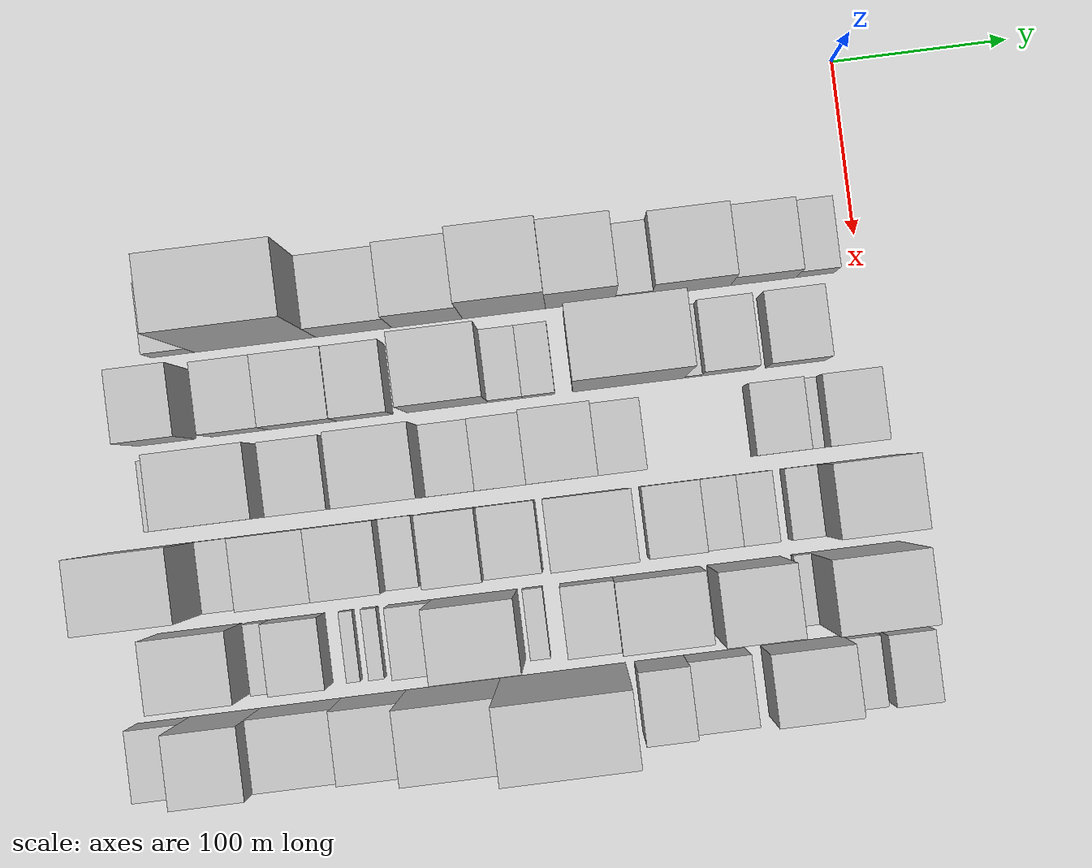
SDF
<sdf version="1.6">
 <world name="default">
  <include><name>ground_plane_1</name><uri>model://HANNAS_ground_plane</uri></include>
  <model name="building_15">
   <static>1</static>
   <pose>100.0000 -392.8743 0 0.000000 0.000000 0.000000</pose>
   <link name="link">
    <pose>0 0 21.00 0 0 0</pose>
    <collision name="collision"><geometry><box><size>40.0000 24.7014 42.0000</size></box></geometry></collision>
    <visual name="visual">
     <cast_shadows>0</cast_shadows>
     <geometry><box><size>40.0000 24.7014 42.0000</size></box></geometry>
     <material>
      <script>
       <uri>model://HANNAS_wall/materials/scripts</uri>
       <uri>model://HANNAS_wall/materials/textures</uri>
       <name>vrc/HANNAS_wall</name>
      </script>
     </material>
    </visual>
   </link>
  </model>
  <model name="building_16">
   <static>1</static>
   <pose>100.0000 -345.8023 0 0.000000 0.000000 0.000000</pose>
   <link name="link">
    <pose>0 0 100.50 0 0 0</pose>
    <collision name="collision"><geometry><box><size>40.0000 69.4425 201.0000</size></box></geometry></collision>
    <visual name="visual">
     <cast_shadows>0</cast_shadows>
     <geometry><box><size>40.0000 69.4425 201.0000</size></box></geometry>
     <material>
      <script>
       <uri>model://HANNAS_wall/materials/scripts</uri>
       <uri>model://HANNAS_wall/materials/textures</uri>
       <name>vrc/HANNAS_wall</name>
      </script>
     </material>
    </visual>
   </link>
  </model>
  <model name="building_17">
   <static>1</static>
   <pose>100.0000 -289.2329 0 0.000000 0.000000 0.000000</pose>
   <link name="link">
    <pose>0 0 42.00 0 0 0</pose>
    <collision name="collision"><geometry><box><size>40.0000 43.6964 84.0000</size></box></geometry></collision>
    <visual name="visual">
     <cast_shadows>0</cast_shadows>
     <geometry><box><size>40.0000 43.6964 84.0000</size></box></geometry>
     <material>
      <script>
       <uri>model://HANNAS_wall/materials/scripts</uri>
       <uri>model://HANNAS_wall/materials/textures</uri>
       <name>vrc/HANNAS_wall</name>
      </script>
     </material>
    </visual>
   </link>
  </model>
  <model name="building_18">
   <static>1</static>
   <pose>100.0000 -247.1147 0 0.000000 0.000000 0.000000</pose>
   <link name="link">
    <pose>0 0 52.50 0 0 0</pose>
    <collision name="collision"><geometry><box><size>40.0000 40.5399 105.0000</size></box></geometry></collision>
    <visual name="visual">
     <cast_shadows>0</cast_shadows>
     <geometry><box><size>40.0000 40.5399 105.0000</size></box></geometry>
     <material>
      <script>
       <uri>model://HANNAS_wall/materials/scripts</uri>
       <uri>model://HANNAS_wall/materials/textures</uri>
       <name>vrc/HANNAS_wall</name>
      </script>
     </material>
    </visual>
   </link>
  </model>
  <model name="building_19">
   <static>1</static>
   <pose>100.0000 -203.0991 0 0.000000 0.000000 0.000000</pose>
   <link name="link">
    <pose>0 0 70.50 0 0 0</pose>
    <collision name="collision"><geometry><box><size>40.0000 47.4914 141.0000</size></box></geometry></collision>
    <visual name="visual">
     <cast_shadows>0</cast_shadows>
     <geometry><box><size>40.0000 47.4914 141.0000</size></box></geometry>
     <material>
      <script>
       <uri>model://HANNAS_wall/materials/scripts</uri>
       <uri>model://HANNAS_wall/materials/textures</uri>
       <name>vrc/HANNAS_wall</name>
      </script>
     </material>
    </visual>
   </link>
  </model>
  <model name="building_20">
   <static>1</static>
   <pose>100.0000 -159.4786 0 0.000000 0.000000 0.000000</pose>
   <link name="link">
    <pose>0 0 58.50 0 0 0</pose>
    <collision name="collision"><geometry><box><size>40.0000 39.7496 117.0000</size></box></geometry></collision>
    <visual name="visual">
     <cast_shadows>0</cast_shadows>
     <geometry><box><size>40.0000 39.7496 117.0000</size></box></geometry>
     <material>
      <script>
       <uri>model://HANNAS_wall/materials/scripts</uri>
       <uri>model://HANNAS_wall/materials/textures</uri>
       <name>vrc/HANNAS_wall</name>
      </script>
     </material>
    </visual>
   </link>
  </model>
  <model name="building_21">
   <static>1</static>
   <pose>100.0000 -129.1754 0 0.000000 0.000000 0.000000</pose>
   <link name="link">
    <pose>0 0 19.50 0 0 0</pose>
    <collision name="collision"><geometry><box><size>40.0000 20.8567 39.0000</size></box></geometry></collision>
    <visual name="visual">
     <cast_shadows>0</cast_shadows>
     <geometry><box><size>40.0000 20.8567 39.0000</size></box></geometry>
     <material>
      <script>
       <uri>model://HANNAS_wall/materials/scripts</uri>
       <uri>model://HANNAS_wall/materials/textures</uri>
       <name>vrc/HANNAS_wall</name>
      </script>
     </material>
    </visual>
   </link>
  </model>
  <model name="building_22">
   <static>1</static>
   <pose>100.0000 -96.0794 0 0.000000 0.000000 0.000000</pose>
   <link name="link">
    <pose>0 0 43.50 0 0 0</pose>
    <collision name="collision"><geometry><box><size>40.0000 45.3353 87.0000</size></box></geometry></collision>
    <visual name="visual">
     <cast_shadows>0</cast_shadows>
     <geometry><box><size>40.0000 45.3353 87.0000</size></box></geometry>
     <material>
      <script>
       <uri>model://HANNAS_wall/materials/scripts</uri>
       <uri>model://HANNAS_wall/materials/textures</uri>
       <name>vrc/HANNAS_wall</name>
      </script>
     </material>
    </visual>
   </link>
  </model>
  <model name="building_23">
   <static>1</static>
   <pose>100.0000 -54.5835 0 0.000000 0.000000 0.000000</pose>
   <link name="link">
    <pose>0 0 31.50 0 0 0</pose>
    <collision name="collision"><geometry><box><size>40.0000 37.6564 63.0000</size></box></geometry></collision>
    <visual name="visual">
     <cast_shadows>0</cast_shadows>
     <geometry><box><size>40.0000 37.6564 63.0000</size></box></geometry>
     <material>
      <script>
       <uri>model://HANNAS_wall/materials/scripts</uri>
       <uri>model://HANNAS_wall/materials/textures</uri>
       <name>vrc/HANNAS_wall</name>
      </script>
     </material>
    </visual>
   </link>
  </model>
  <model name="building_24">
   <static>1</static>
   <pose>100.0000 -24.7409 0 0.000000 0.000000 0.000000</pose>
   <link name="link">
    <pose>0 0 21.00 0 0 0</pose>
    <collision name="collision"><geometry><box><size>40.0000 22.0289 42.0000</size></box></geometry></collision>
    <visual name="visual">
     <cast_shadows>0</cast_shadows>
     <geometry><box><size>40.0000 22.0289 42.0000</size></box></geometry>
     <material>
      <script>
       <uri>model://HANNAS_wall/materials/scripts</uri>
       <uri>model://HANNAS_wall/materials/textures</uri>
       <name>vrc/HANNAS_wall</name>
      </script>
     </material>
    </visual>
   </link>
  </model>
  <model name="building_58">
   <static>1</static>
   <pose>149.0000 -402.2383 0 0.000000 0.000000 0.000000</pose>
   <link name="link">
    <pose>0 0 46.50 0 0 0</pose>
    <collision name="collision"><geometry><box><size>40.0000 33.3585 93.0000</size></box></geometry></collision>
    <visual name="visual">
     <cast_shadows>0</cast_shadows>
     <geometry><box><size>40.0000 33.3585 93.0000</size></box></geometry>
     <material>
      <script>
       <uri>model://HANNAS_wall/materials/scripts</uri>
       <uri>model://HANNAS_wall/materials/textures</uri>
       <name>vrc/HANNAS_wall</name>
      </script>
     </material>
    </visual>
   </link>
  </model>
  <model name="building_59">
   <static>1</static>
   <pose>149.0000 -360.0440 0 0.000000 0.000000 0.000000</pose>
   <link name="link">
    <pose>0 0 33.00 0 0 0</pose>
    <collision name="collision"><geometry><box><size>40.0000 33.0301 66.0000</size></box></geometry></collision>
    <visual name="visual">
     <cast_shadows>0</cast_shadows>
     <geometry><box><size>40.0000 33.0301 66.0000</size></box></geometry>
     <material>
      <script>
       <uri>model://HANNAS_wall/materials/scripts</uri>
       <uri>model://HANNAS_wall/materials/textures</uri>
       <name>vrc/HANNAS_wall</name>
      </script>
     </material>
    </visual>
   </link>
  </model>
  <model name="building_60">
   <static>1</static>
   <pose>149.0000 -323.9631 0 0.000000 0.000000 0.000000</pose>
   <link name="link">
    <pose>0 0 33.00 0 0 0</pose>
    <collision name="collision"><geometry><box><size>40.0000 39.1316 66.0000</size></box></geometry></collision>
    <visual name="visual">
     <cast_shadows>0</cast_shadows>
     <geometry><box><size>40.0000 39.1316 66.0000</size></box></geometry>
     <material>
      <script>
       <uri>model://HANNAS_wall/materials/scripts</uri>
       <uri>model://HANNAS_wall/materials/textures</uri>
       <name>vrc/HANNAS_wall</name>
      </script>
     </material>
    </visual>
   </link>
  </model>
  <model name="building_61">
   <static>1</static>
   <pose>149.0000 -288.6069 0 0.000000 0.000000 0.000000</pose>
   <link name="link">
    <pose>0 0 31.50 0 0 0</pose>
    <collision name="collision"><geometry><box><size>40.0000 31.5810 63.0000</size></box></geometry></collision>
    <visual name="visual">
     <cast_shadows>0</cast_shadows>
     <geometry><box><size>40.0000 31.5810 63.0000</size></box></geometry>
     <material>
      <script>
       <uri>model://HANNAS_wall/materials/scripts</uri>
       <uri>model://HANNAS_wall/materials/textures</uri>
       <name>vrc/HANNAS_wall</name>
      </script>
     </material>
    </visual>
   </link>
  </model>
  <model name="building_62">
   <static>1</static>
   <pose>149.0000 -241.5577 0 0.000000 0.000000 0.000000</pose>
   <link name="link">
    <pose>0 0 58.50 0 0 0</pose>
    <collision name="collision"><geometry><box><size>40.0000 46.5174 117.0000</size></box></geometry></collision>
    <visual name="visual">
     <cast_shadows>0</cast_shadows>
     <geometry><box><size>40.0000 46.5174 117.0000</size></box></geometry>
     <material>
      <script>
       <uri>model://HANNAS_wall/materials/scripts</uri>
       <uri>model://HANNAS_wall/materials/textures</uri>
       <name>vrc/HANNAS_wall</name>
      </script>
     </material>
    </visual>
   </link>
  </model>
  <model name="building_63">
   <static>1</static>
   <pose>149.0000 -208.4302 0 0.000000 0.000000 0.000000</pose>
   <link name="link">
    <pose>0 0 16.50 0 0 0</pose>
    <collision name="collision"><geometry><box><size>40.0000 19.7375 33.0000</size></box></geometry></collision>
    <visual name="visual">
     <cast_shadows>0</cast_shadows>
     <geometry><box><size>40.0000 19.7375 33.0000</size></box></geometry>
     <material>
      <script>
       <uri>model://HANNAS_wall/materials/scripts</uri>
       <uri>model://HANNAS_wall/materials/textures</uri>
       <name>vrc/HANNAS_wall</name>
      </script>
     </material>
    </visual>
   </link>
  </model>
  <model name="building_64">
   <static>1</static>
   <pose>149.0000 -189.3045 0 0.000000 0.000000 0.000000</pose>
   <link name="link">
    <pose>0 0 16.50 0 0 0</pose>
    <collision name="collision"><geometry><box><size>40.0000 18.5139 33.0000</size></box></geometry></collision>
    <visual name="visual">
     <cast_shadows>0</cast_shadows>
     <geometry><box><size>40.0000 18.5139 33.0000</size></box></geometry>
     <material>
      <script>
       <uri>model://HANNAS_wall/materials/scripts</uri>
       <uri>model://HANNAS_wall/materials/textures</uri>
       <name>vrc/HANNAS_wall</name>
      </script>
     </material>
    </visual>
   </link>
  </model>
  <model name="building_65">
   <static>1</static>
   <pose>149.0000 -138.1636 0 0.000000 0.000000 0.000000</pose>
   <link name="link">
    <pose>0 0 85.50 0 0 0</pose>
    <collision name="collision"><geometry><box><size>40.0000 63.7679 171.0000</size></box></geometry></collision>
    <visual name="visual">
     <cast_shadows>0</cast_shadows>
     <geometry><box><size>40.0000 63.7679 171.0000</size></box></geometry>
     <material>
      <script>
       <uri>model://HANNAS_wall/materials/scripts</uri>
       <uri>model://HANNAS_wall/materials/textures</uri>
       <name>vrc/HANNAS_wall</name>
      </script>
     </material>
    </visual>
   </link>
  </model>
  <model name="building_66">
   <static>1</static>
   <pose>149.0000 -101.3950 0 0.000000 0.000000 0.000000</pose>
   <link name="link">
    <pose>0 0 10.50 0 0 0</pose>
    <collision name="collision"><geometry><box><size>40.0000 9.7692 21.0000</size></box></geometry></collision>
    <visual name="visual">
     <cast_shadows>0</cast_shadows>
     <geometry><box><size>40.0000 9.7692 21.0000</size></box></geometry>
     <material>
      <script>
       <uri>model://HANNAS_wall/materials/scripts</uri>
       <uri>model://HANNAS_wall/materials/textures</uri>
       <name>vrc/HANNAS_wall</name>
      </script>
     </material>
    </visual>
   </link>
  </model>
  <model name="building_67">
   <static>1</static>
   <pose>149.0000 -81.0653 0 0.000000 0.000000 0.000000</pose>
   <link name="link">
    <pose>0 0 28.50 0 0 0</pose>
    <collision name="collision"><geometry><box><size>40.0000 30.8902 57.0000</size></box></geometry></collision>
    <visual name="visual">
     <cast_shadows>0</cast_shadows>
     <geometry><box><size>40.0000 30.8902 57.0000</size></box></geometry>
     <material>
      <script>
       <uri>model://HANNAS_wall/materials/scripts</uri>
       <uri>model://HANNAS_wall/materials/textures</uri>
       <name>vrc/HANNAS_wall</name>
      </script>
     </material>
    </visual>
   </link>
  </model>
  <model name="building_68">
   <static>1</static>
   <pose>149.0000 -42.6213 0 0.000000 0.000000 0.000000</pose>
   <link name="link">
    <pose>0 0 30.00 0 0 0</pose>
    <collision name="collision"><geometry><box><size>40.0000 33.9979 60.0000</size></box></geometry></collision>
    <visual name="visual">
     <cast_shadows>0</cast_shadows>
     <geometry><box><size>40.0000 33.9979 60.0000</size></box></geometry>
     <material>
      <script>
       <uri>model://HANNAS_wall/materials/scripts</uri>
       <uri>model://HANNAS_wall/materials/textures</uri>
       <name>vrc/HANNAS_wall</name>
      </script>
     </material>
    </visual>
   </link>
  </model>
  <model name="building_102">
   <static>1</static>
   <pose>198.0000 -411.8034 0 0.000000 0.000000 0.000000</pose>
   <link name="link">
    <pose>0 0 12.00 0 0 0</pose>
    <collision name="collision"><geometry><box><size>40.0000 11.9186 24.0000</size></box></geometry></collision>
    <visual name="visual">
     <cast_shadows>0</cast_shadows>
     <geometry><box><size>40.0000 11.9186 24.0000</size></box></geometry>
     <material>
      <script>
       <uri>model://HANNAS_wall/materials/scripts</uri>
       <uri>model://HANNAS_wall/materials/textures</uri>
       <name>vrc/HANNAS_wall</name>
      </script>
     </material>
    </visual>
   </link>
  </model>
  <model name="building_103">
   <static>1</static>
   <pose>198.0000 -370.4230 0 0.000000 0.000000 0.000000</pose>
   <link name="link">
    <pose>0 0 70.50 0 0 0</pose>
    <collision name="collision"><geometry><box><size>40.0000 52.8423 141.0000</size></box></geometry></collision>
    <visual name="visual">
     <cast_shadows>0</cast_shadows>
     <geometry><box><size>40.0000 52.8423 141.0000</size></box></geometry>
     <material>
      <script>
       <uri>model://HANNAS_wall/materials/scripts</uri>
       <uri>model://HANNAS_wall/materials/textures</uri>
       <name>vrc/HANNAS_wall</name>
      </script>
     </material>
    </visual>
   </link>
  </model>
  <model name="building_104">
   <static>1</static>
   <pose>198.0000 -324.5464 0 0.000000 0.000000 0.000000</pose>
   <link name="link">
    <pose>0 0 51.00 0 0 0</pose>
    <collision name="collision"><geometry><box><size>40.0000 32.9109 102.0000</size></box></geometry></collision>
    <visual name="visual">
     <cast_shadows>0</cast_shadows>
     <geometry><box><size>40.0000 32.9109 102.0000</size></box></geometry>
     <material>
      <script>
       <uri>model://HANNAS_wall/materials/scripts</uri>
       <uri>model://HANNAS_wall/materials/textures</uri>
       <name>vrc/HANNAS_wall</name>
      </script>
     </material>
    </visual>
   </link>
  </model>
  <model name="building_105">
   <static>1</static>
   <pose>198.0000 -305.0614 0 0.000000 0.000000 0.000000</pose>
   <link name="link">
    <pose>0 0 7.50 0 0 0</pose>
    <collision name="collision"><geometry><box><size>40.0000 6.0591 15.0000</size></box></geometry></collision>
    <visual name="visual">
     <cast_shadows>0</cast_shadows>
     <geometry><box><size>40.0000 6.0591 15.0000</size></box></geometry>
     <material>
      <script>
       <uri>model://HANNAS_wall/materials/scripts</uri>
       <uri>model://HANNAS_wall/materials/textures</uri>
       <name>vrc/HANNAS_wall</name>
      </script>
     </material>
    </visual>
   </link>
  </model>
  <model name="building_106">
   <static>1</static>
   <pose>198.0000 -279.8752 0 0.000000 0.000000 0.000000</pose>
   <link name="link">
    <pose>0 0 72.00 0 0 0</pose>
    <collision name="collision"><geometry><box><size>40.0000 44.3132 144.0000</size></box></geometry></collision>
    <visual name="visual">
     <cast_shadows>0</cast_shadows>
     <geometry><box><size>40.0000 44.3132 144.0000</size></box></geometry>
     <material>
      <script>
       <uri>model://HANNAS_wall/materials/scripts</uri>
       <uri>model://HANNAS_wall/materials/textures</uri>
       <name>vrc/HANNAS_wall</name>
      </script>
     </material>
    </visual>
   </link>
  </model>
  <model name="building_107">
   <static>1</static>
   <pose>198.0000 -244.0266 0 0.000000 0.000000 0.000000</pose>
   <link name="link">
    <pose>0 0 24.00 0 0 0</pose>
    <collision name="collision"><geometry><box><size>40.0000 27.3840 48.0000</size></box></geometry></collision>
    <visual name="visual">
     <cast_shadows>0</cast_shadows>
     <geometry><box><size>40.0000 27.3840 48.0000</size></box></geometry>
     <material>
      <script>
       <uri>model://HANNAS_wall/materials/scripts</uri>
       <uri>model://HANNAS_wall/materials/textures</uri>
       <name>vrc/HANNAS_wall</name>
      </script>
     </material>
    </visual>
   </link>
  </model>
  <model name="building_108">
   <static>1</static>
   <pose>198.0000 -215.6127 0 0.000000 0.000000 0.000000</pose>
   <link name="link">
    <pose>0 0 28.50 0 0 0</pose>
    <collision name="collision"><geometry><box><size>40.0000 29.4438 57.0000</size></box></geometry></collision>
    <visual name="visual">
     <cast_shadows>0</cast_shadows>
     <geometry><box><size>40.0000 29.4438 57.0000</size></box></geometry>
     <material>
      <script>
       <uri>model://HANNAS_wall/materials/scripts</uri>
       <uri>model://HANNAS_wall/materials/textures</uri>
       <name>vrc/HANNAS_wall</name>
      </script>
     </material>
    </visual>
   </link>
  </model>
  <model name="building_109">
   <static>1</static>
   <pose>198.0000 -181.6042 0 0.000000 0.000000 0.000000</pose>
   <link name="link">
    <pose>0 0 54.00 0 0 0</pose>
    <collision name="collision"><geometry><box><size>40.0000 38.5733 108.0000</size></box></geometry></collision>
    <visual name="visual">
     <cast_shadows>0</cast_shadows>
     <geometry><box><size>40.0000 38.5733 108.0000</size></box></geometry>
     <material>
      <script>
       <uri>model://HANNAS_wall/materials/scripts</uri>
       <uri>model://HANNAS_wall/materials/textures</uri>
       <name>vrc/HANNAS_wall</name>
      </script>
     </material>
    </visual>
   </link>
  </model>
  <model name="building_110">
   <static>1</static>
   <pose>198.0000 -148.4506 0 0.000000 0.000000 0.000000</pose>
   <link name="link">
    <pose>0 0 27.00 0 0 0</pose>
    <collision name="collision"><geometry><box><size>40.0000 27.7338 54.0000</size></box></geometry></collision>
    <visual name="visual">
     <cast_shadows>0</cast_shadows>
     <geometry><box><size>40.0000 27.7338 54.0000</size></box></geometry>
     <material>
      <script>
       <uri>model://HANNAS_wall/materials/scripts</uri>
       <uri>model://HANNAS_wall/materials/textures</uri>
       <name>vrc/HANNAS_wall</name>
      </script>
     </material>
    </visual>
   </link>
  </model>
  <model name="building_111">
   <static>1</static>
   <pose>198.0000 -58.6402 0 0.000000 0.000000 0.000000</pose>
   <link name="link">
    <pose>0 0 28.50 0 0 0</pose>
    <collision name="collision"><geometry><box><size>40.0000 30.6290 57.0000</size></box></geometry></collision>
    <visual name="visual">
     <cast_shadows>0</cast_shadows>
     <geometry><box><size>40.0000 30.6290 57.0000</size></box></geometry>
     <material>
      <script>
       <uri>model://HANNAS_wall/materials/scripts</uri>
       <uri>model://HANNAS_wall/materials/textures</uri>
       <name>vrc/HANNAS_wall</name>
      </script>
     </material>
    </visual>
   </link>
  </model>
  <model name="building_112">
   <static>1</static>
   <pose>198.0000 -38.4091 0 0.000000 0.000000 0.000000</pose>
   <link name="link">
    <pose>0 0 10.50 0 0 0</pose>
    <collision name="collision"><geometry><box><size>40.0000 9.8333 21.0000</size></box></geometry></collision>
    <visual name="visual">
     <cast_shadows>0</cast_shadows>
     <geometry><box><size>40.0000 9.8333 21.0000</size></box></geometry>
     <material>
      <script>
       <uri>model://HANNAS_wall/materials/scripts</uri>
       <uri>model://HANNAS_wall/materials/textures</uri>
       <name>vrc/HANNAS_wall</name>
      </script>
     </material>
    </visual>
   </link>
  </model>
  <model name="building_113">
   <static>1</static>
   <pose>198.0000 -16.9381 0 0.000000 0.000000 0.000000</pose>
   <link name="link">
    <pose>0 0 30.00 0 0 0</pose>
    <collision name="collision"><geometry><box><size>40.0000 33.1088 60.0000</size></box></geometry></collision>
    <visual name="visual">
     <cast_shadows>0</cast_shadows>
     <geometry><box><size>40.0000 33.1088 60.0000</size></box></geometry>
     <material>
      <script>
       <uri>model://HANNAS_wall/materials/scripts</uri>
       <uri>model://HANNAS_wall/materials/textures</uri>
       <name>vrc/HANNAS_wall</name>
      </script>
     </material>
    </visual>
   </link>
  </model>
  <model name="building_149">
   <static>1</static>
   <pose>247.0000 -415.8678 0 0.000000 0.000000 0.000000</pose>
   <link name="link">
    <pose>0 0 75.00 0 0 0</pose>
    <collision name="collision"><geometry><box><size>40.0000 53.8516 150.0000</size></box></geometry></collision>
    <visual name="visual">
     <cast_shadows>0</cast_shadows>
     <geometry><box><size>40.0000 53.8516 150.0000</size></box></geometry>
     <material>
      <script>
       <uri>model://HANNAS_wall/materials/scripts</uri>
       <uri>model://HANNAS_wall/materials/textures</uri>
       <name>vrc/HANNAS_wall</name>
      </script>
     </material>
    </visual>
   </link>
  </model>
  <model name="building_150">
   <static>1</static>
   <pose>247.0000 -377.6943 0 0.000000 0.000000 0.000000</pose>
   <link name="link">
    <pose>0 0 19.50 0 0 0</pose>
    <collision name="collision"><geometry><box><size>40.0000 22.4955 39.0000</size></box></geometry></collision>
    <visual name="visual">
     <cast_shadows>0</cast_shadows>
     <geometry><box><size>40.0000 22.4955 39.0000</size></box></geometry>
     <material>
      <script>
       <uri>model://HANNAS_wall/materials/scripts</uri>
       <uri>model://HANNAS_wall/materials/textures</uri>
       <name>vrc/HANNAS_wall</name>
      </script>
     </material>
    </visual>
   </link>
  </model>
  <model name="building_151">
   <static>1</static>
   <pose>247.0000 -345.8579 0 0.000000 0.000000 0.000000</pose>
   <link name="link">
    <pose>0 0 37.50 0 0 0</pose>
    <collision name="collision"><geometry><box><size>40.0000 41.1773 75.0000</size></box></geometry></collision>
    <visual name="visual">
     <cast_shadows>0</cast_shadows>
     <geometry><box><size>40.0000 41.1773 75.0000</size></box></geometry>
     <material>
      <script>
       <uri>model://HANNAS_wall/materials/scripts</uri>
       <uri>model://HANNAS_wall/materials/textures</uri>
       <name>vrc/HANNAS_wall</name>
      </script>
     </material>
    </visual>
   </link>
  </model>
  <model name="building_152">
   <static>1</static>
   <pose>247.0000 -306.1244 0 0.000000 0.000000 0.000000</pose>
   <link name="link">
    <pose>0 0 37.50 0 0 0</pose>
    <collision name="collision"><geometry><box><size>40.0000 38.2896 75.0000</size></box></geometry></collision>
    <visual name="visual">
     <cast_shadows>0</cast_shadows>
     <geometry><box><size>40.0000 38.2896 75.0000</size></box></geometry>
     <material>
      <script>
       <uri>model://HANNAS_wall/materials/scripts</uri>
       <uri>model://HANNAS_wall/materials/textures</uri>
       <name>vrc/HANNAS_wall</name>
      </script>
     </material>
    </visual>
   </link>
  </model>
  <model name="building_153">
   <static>1</static>
   <pose>247.0000 -277.6971 0 0.000000 0.000000 0.000000</pose>
   <link name="link">
    <pose>0 0 16.50 0 0 0</pose>
    <collision name="collision"><geometry><box><size>40.0000 18.5651 33.0000</size></box></geometry></collision>
    <visual name="visual">
     <cast_shadows>0</cast_shadows>
     <geometry><box><size>40.0000 18.5651 33.0000</size></box></geometry>
     <material>
      <script>
       <uri>model://HANNAS_wall/materials/scripts</uri>
       <uri>model://HANNAS_wall/materials/textures</uri>
       <name>vrc/HANNAS_wall</name>
      </script>
     </material>
    </visual>
   </link>
  </model>
  <model name="building_154">
   <static>1</static>
   <pose>247.0000 -247.2154 0 0.000000 0.000000 0.000000</pose>
   <link name="link">
    <pose>0 0 46.50 0 0 0</pose>
    <collision name="collision"><geometry><box><size>40.0000 32.3981 93.0000</size></box></geometry></collision>
    <visual name="visual">
     <cast_shadows>0</cast_shadows>
     <geometry><box><size>40.0000 32.3981 93.0000</size></box></geometry>
     <material>
      <script>
       <uri>model://HANNAS_wall/materials/scripts</uri>
       <uri>model://HANNAS_wall/materials/textures</uri>
       <name>vrc/HANNAS_wall</name>
      </script>
     </material>
    </visual>
   </link>
  </model>
  <model name="building_155">
   <static>1</static>
   <pose>247.0000 -214.9817 0 0.000000 0.000000 0.000000</pose>
   <link name="link">
    <pose>0 0 30.00 0 0 0</pose>
    <collision name="collision"><geometry><box><size>40.0000 32.0693 60.0000</size></box></geometry></collision>
    <visual name="visual">
     <cast_shadows>0</cast_shadows>
     <geometry><box><size>40.0000 32.0693 60.0000</size></box></geometry>
     <material>
      <script>
       <uri>model://HANNAS_wall/materials/scripts</uri>
       <uri>model://HANNAS_wall/materials/textures</uri>
       <name>vrc/HANNAS_wall</name>
      </script>
     </material>
    </visual>
   </link>
  </model>
  <model name="building_156">
   <static>1</static>
   <pose>247.0000 -169.7118 0 0.000000 0.000000 0.000000</pose>
   <link name="link">
    <pose>0 0 40.50 0 0 0</pose>
    <collision name="collision"><geometry><box><size>40.0000 48.4705 81.0000</size></box></geometry></collision>
    <visual name="visual">
     <cast_shadows>0</cast_shadows>
     <geometry><box><size>40.0000 48.4705 81.0000</size></box></geometry>
     <material>
      <script>
       <uri>model://HANNAS_wall/materials/scripts</uri>
       <uri>model://HANNAS_wall/materials/textures</uri>
       <name>vrc/HANNAS_wall</name>
      </script>
     </material>
    </visual>
   </link>
  </model>
  <model name="building_157">
   <static>1</static>
   <pose>247.0000 -123.2591 0 0.000000 0.000000 0.000000</pose>
   <link name="link">
    <pose>0 0 28.50 0 0 0</pose>
    <collision name="collision"><geometry><box><size>40.0000 32.4349 57.0000</size></box></geometry></collision>
    <visual name="visual">
     <cast_shadows>0</cast_shadows>
     <geometry><box><size>40.0000 32.4349 57.0000</size></box></geometry>
     <material>
      <script>
       <uri>model://HANNAS_wall/materials/scripts</uri>
       <uri>model://HANNAS_wall/materials/textures</uri>
       <name>vrc/HANNAS_wall</name>
      </script>
     </material>
    </visual>
   </link>
  </model>
  <model name="building_158">
   <static>1</static>
   <pose>247.0000 -96.6173 0 0.000000 0.000000 0.000000</pose>
   <link name="link">
    <pose>0 0 19.50 0 0 0</pose>
    <collision name="collision"><geometry><box><size>40.0000 20.8487 39.0000</size></box></geometry></collision>
    <visual name="visual">
     <cast_shadows>0</cast_shadows>
     <geometry><box><size>40.0000 20.8487 39.0000</size></box></geometry>
     <material>
      <script>
       <uri>model://HANNAS_wall/materials/scripts</uri>
       <uri>model://HANNAS_wall/materials/textures</uri>
       <name>vrc/HANNAS_wall</name>
      </script>
     </material>
    </visual>
   </link>
  </model>
  <model name="building_159">
   <static>1</static>
   <pose>247.0000 -75.9783 0 0.000000 0.000000 0.000000</pose>
   <link name="link">
    <pose>0 0 19.50 0 0 0</pose>
    <collision name="collision"><geometry><box><size>40.0000 20.4293 39.0000</size></box></geometry></collision>
    <visual name="visual">
     <cast_shadows>0</cast_shadows>
     <geometry><box><size>40.0000 20.4293 39.0000</size></box></geometry>
     <material>
      <script>
       <uri>model://HANNAS_wall/materials/scripts</uri>
       <uri>model://HANNAS_wall/materials/textures</uri>
       <name>vrc/HANNAS_wall</name>
      </script>
     </material>
    </visual>
   </link>
  </model>
  <model name="building_160">
   <static>1</static>
   <pose>247.0000 -49.5473 0 0.000000 0.000000 0.000000</pose>
   <link name="link">
    <pose>0 0 18.00 0 0 0</pose>
    <collision name="collision"><geometry><box><size>40.0000 18.4327 36.0000</size></box></geometry></collision>
    <visual name="visual">
     <cast_shadows>0</cast_shadows>
     <geometry><box><size>40.0000 18.4327 36.0000</size></box></geometry>
     <material>
      <script>
       <uri>model://HANNAS_wall/materials/scripts</uri>
       <uri>model://HANNAS_wall/materials/textures</uri>
       <name>vrc/HANNAS_wall</name>
      </script>
     </material>
    </visual>
   </link>
  </model>
  <model name="building_161">
   <static>1</static>
   <pose>247.0000 -16.7685 0 0.000000 0.000000 0.000000</pose>
   <link name="link">
    <pose>0 0 64.50 0 0 0</pose>
    <collision name="collision"><geometry><box><size>40.0000 47.1249 129.0000</size></box></geometry></collision>
    <visual name="visual">
     <cast_shadows>0</cast_shadows>
     <geometry><box><size>40.0000 47.1249 129.0000</size></box></geometry>
     <material>
      <script>
       <uri>model://HANNAS_wall/materials/scripts</uri>
       <uri>model://HANNAS_wall/materials/textures</uri>
       <name>vrc/HANNAS_wall</name>
      </script>
     </material>
    </visual>
   </link>
  </model>
  <model name="building_196">
   <static>1</static>
   <pose>296.0000 -396.1432 0 0.000000 0.000000 0.000000</pose>
   <link name="link">
    <pose>0 0 42.00 0 0 0</pose>
    <collision name="collision"><geometry><box><size>40.0000 47.6077 84.0000</size></box></geometry></collision>
    <visual name="visual">
     <cast_shadows>0</cast_shadows>
     <geometry><box><size>40.0000 47.6077 84.0000</size></box></geometry>
     <material>
      <script>
       <uri>model://HANNAS_wall/materials/scripts</uri>
       <uri>model://HANNAS_wall/materials/textures</uri>
       <name>vrc/HANNAS_wall</name>
      </script>
     </material>
    </visual>
   </link>
  </model>
  <model name="building_197">
   <static>1</static>
   <pose>296.0000 -362.9938 0 0.000000 0.000000 0.000000</pose>
   <link name="link">
    <pose>0 0 13.50 0 0 0</pose>
    <collision name="collision"><geometry><box><size>40.0000 12.6910 27.0000</size></box></geometry></collision>
    <visual name="visual">
     <cast_shadows>0</cast_shadows>
     <geometry><box><size>40.0000 12.6910 27.0000</size></box></geometry>
     <material>
      <script>
       <uri>model://HANNAS_wall/materials/scripts</uri>
       <uri>model://HANNAS_wall/materials/textures</uri>
       <name>vrc/HANNAS_wall</name>
      </script>
     </material>
    </visual>
   </link>
  </model>
  <model name="building_198">
   <static>1</static>
   <pose>296.0000 -340.8847 0 0.000000 0.000000 0.000000</pose>
   <link name="link">
    <pose>0 0 27.00 0 0 0</pose>
    <collision name="collision"><geometry><box><size>40.0000 31.5272 54.0000</size></box></geometry></collision>
    <visual name="visual">
     <cast_shadows>0</cast_shadows>
     <geometry><box><size>40.0000 31.5272 54.0000</size></box></geometry>
     <material>
      <script>
       <uri>model://HANNAS_wall/materials/scripts</uri>
       <uri>model://HANNAS_wall/materials/textures</uri>
       <name>vrc/HANNAS_wall</name>
      </script>
     </material>
    </visual>
   </link>
  </model>
  <model name="building_199">
   <static>1</static>
   <pose>296.0000 -312.2320 0 0.000000 0.000000 0.000000</pose>
   <link name="link">
    <pose>0 0 9.00 0 0 0</pose>
    <collision name="collision"><geometry><box><size>40.0000 7.7784 18.0000</size></box></geometry></collision>
    <visual name="visual">
     <cast_shadows>0</cast_shadows>
     <geometry><box><size>40.0000 7.7784 18.0000</size></box></geometry>
     <material>
      <script>
       <uri>model://HANNAS_wall/materials/scripts</uri>
       <uri>model://HANNAS_wall/materials/textures</uri>
       <name>vrc/HANNAS_wall</name>
      </script>
     </material>
    </visual>
   </link>
  </model>
  <model name="building_200">
   <static>1</static>
   <pose>296.0000 -298.9350 0 0.000000 0.000000 0.000000</pose>
   <link name="link">
    <pose>0 0 10.50 0 0 0</pose>
    <collision name="collision"><geometry><box><size>40.0000 8.8156 21.0000</size></box></geometry></collision>
    <visual name="visual">
     <cast_shadows>0</cast_shadows>
     <geometry><box><size>40.0000 8.8156 21.0000</size></box></geometry>
     <material>
      <script>
       <uri>model://HANNAS_wall/materials/scripts</uri>
       <uri>model://HANNAS_wall/materials/textures</uri>
       <name>vrc/HANNAS_wall</name>
      </script>
     </material>
    </visual>
   </link>
  </model>
  <model name="building_201">
   <static>1</static>
   <pose>296.0000 -276.1710 0 0.000000 0.000000 0.000000</pose>
   <link name="link">
    <pose>0 0 22.50 0 0 0</pose>
    <collision name="collision"><geometry><box><size>40.0000 24.7124 45.0000</size></box></geometry></collision>
    <visual name="visual">
     <cast_shadows>0</cast_shadows>
     <geometry><box><size>40.0000 24.7124 45.0000</size></box></geometry>
     <material>
      <script>
       <uri>model://HANNAS_wall/materials/scripts</uri>
       <uri>model://HANNAS_wall/materials/textures</uri>
       <name>vrc/HANNAS_wall</name>
      </script>
     </material>
    </visual>
   </link>
  </model>
  <model name="building_202">
   <static>1</static>
   <pose>296.0000 -239.4069 0 0.000000 0.000000 0.000000</pose>
   <link name="link">
    <pose>0 0 64.50 0 0 0</pose>
    <collision name="collision"><geometry><box><size>40.0000 48.8159 129.0000</size></box></geometry></collision>
    <visual name="visual">
     <cast_shadows>0</cast_shadows>
     <geometry><box><size>40.0000 48.8159 129.0000</size></box></geometry>
     <material>
      <script>
       <uri>model://HANNAS_wall/materials/scripts</uri>
       <uri>model://HANNAS_wall/materials/textures</uri>
       <name>vrc/HANNAS_wall</name>
      </script>
     </material>
    </visual>
   </link>
  </model>
  <model name="building_203">
   <static>1</static>
   <pose>296.0000 -206.3191 0 0.000000 0.000000 0.000000</pose>
   <link name="link">
    <pose>0 0 12.00 0 0 0</pose>
    <collision name="collision"><geometry><box><size>40.0000 11.3596 24.0000</size></box></geometry></collision>
    <visual name="visual">
     <cast_shadows>0</cast_shadows>
     <geometry><box><size>40.0000 11.3596 24.0000</size></box></geometry>
     <material>
      <script>
       <uri>model://HANNAS_wall/materials/scripts</uri>
       <uri>model://HANNAS_wall/materials/textures</uri>
       <name>vrc/HANNAS_wall</name>
      </script>
     </material>
    </visual>
   </link>
  </model>
  <model name="building_204">
   <static>1</static>
   <pose>296.0000 -175.6446 0 0.000000 0.000000 0.000000</pose>
   <link name="link">
    <pose>0 0 27.00 0 0 0</pose>
    <collision name="collision"><geometry><box><size>40.0000 29.9894 54.0000</size></box></geometry></collision>
    <visual name="visual">
     <cast_shadows>0</cast_shadows>
     <geometry><box><size>40.0000 29.9894 54.0000</size></box></geometry>
     <material>
      <script>
       <uri>model://HANNAS_wall/materials/scripts</uri>
       <uri>model://HANNAS_wall/materials/textures</uri>
       <name>vrc/HANNAS_wall</name>
      </script>
     </material>
    </visual>
   </link>
  </model>
  <model name="building_205">
   <static>1</static>
   <pose>296.0000 -135.6967 0 0.000000 0.000000 0.000000</pose>
   <link name="link">
    <pose>0 0 42.00 0 0 0</pose>
    <collision name="collision"><geometry><box><size>40.0000 49.9065 84.0000</size></box></geometry></collision>
    <visual name="visual">
     <cast_shadows>0</cast_shadows>
     <geometry><box><size>40.0000 49.9065 84.0000</size></box></geometry>
     <material>
      <script>
       <uri>model://HANNAS_wall/materials/scripts</uri>
       <uri>model://HANNAS_wall/materials/textures</uri>
       <name>vrc/HANNAS_wall</name>
      </script>
     </material>
    </visual>
   </link>
  </model>
  <model name="building_206">
   <static>1</static>
   <pose>296.0000 -85.6734 0 0.000000 0.000000 0.000000</pose>
   <link name="link">
    <pose>0 0 63.00 0 0 0</pose>
    <collision name="collision"><geometry><box><size>40.0000 42.1400 126.0000</size></box></geometry></collision>
    <visual name="visual">
     <cast_shadows>0</cast_shadows>
     <geometry><box><size>40.0000 42.1400 126.0000</size></box></geometry>
     <material>
      <script>
       <uri>model://HANNAS_wall/materials/scripts</uri>
       <uri>model://HANNAS_wall/materials/textures</uri>
       <name>vrc/HANNAS_wall</name>
      </script>
     </material>
    </visual>
   </link>
  </model>
  <model name="building_207">
   <static>1</static>
   <pose>296.0000 -53.6501 0 0.000000 0.000000 0.000000</pose>
   <link name="link">
    <pose>0 0 10.50 0 0 0</pose>
    <collision name="collision"><geometry><box><size>40.0000 9.9067 21.0000</size></box></geometry></collision>
    <visual name="visual">
     <cast_shadows>0</cast_shadows>
     <geometry><box><size>40.0000 9.9067 21.0000</size></box></geometry>
     <material>
      <script>
       <uri>model://HANNAS_wall/materials/scripts</uri>
       <uri>model://HANNAS_wall/materials/textures</uri>
       <name>vrc/HANNAS_wall</name>
      </script>
     </material>
    </visual>
   </link>
  </model>
  <model name="building_208">
   <static>1</static>
   <pose>296.0000 -22.5730 0 0.000000 0.000000 0.000000</pose>
   <link name="link">
    <pose>0 0 73.50 0 0 0</pose>
    <collision name="collision"><geometry><box><size>40.0000 52.2475 147.0000</size></box></geometry></collision>
    <visual name="visual">
     <cast_shadows>0</cast_shadows>
     <geometry><box><size>40.0000 52.2475 147.0000</size></box></geometry>
     <material>
      <script>
       <uri>model://HANNAS_wall/materials/scripts</uri>
       <uri>model://HANNAS_wall/materials/textures</uri>
       <name>vrc/HANNAS_wall</name>
      </script>
     </material>
    </visual>
   </link>
  </model>
  <model name="building_249">
   <static>1</static>
   <pose>345.0000 -423.0717 0 0.000000 0.000000 0.000000</pose>
   <link name="link">
    <pose>0 0 25.50 0 0 0</pose>
    <collision name="collision"><geometry><box><size>40.0000 29.8135 51.0000</size></box></geometry></collision>
    <visual name="visual">
     <cast_shadows>0</cast_shadows>
     <geometry><box><size>40.0000 29.8135 51.0000</size></box></geometry>
     <material>
      <script>
       <uri>model://HANNAS_wall/materials/scripts</uri>
       <uri>model://HANNAS_wall/materials/textures</uri>
       <name>vrc/HANNAS_wall</name>
      </script>
     </material>
    </visual>
   </link>
  </model>
  <model name="building_250">
   <static>1</static>
   <pose>345.0000 -387.9513 0 0.000000 0.000000 0.000000</pose>
   <link name="link">
    <pose>0 0 58.50 0 0 0</pose>
    <collision name="collision"><geometry><box><size>40.0000 40.4273 117.0000</size></box></geometry></collision>
    <visual name="visual">
     <cast_shadows>0</cast_shadows>
     <geometry><box><size>40.0000 40.4273 117.0000</size></box></geometry>
     <material>
      <script>
       <uri>model://HANNAS_wall/materials/scripts</uri>
       <uri>model://HANNAS_wall/materials/textures</uri>
       <name>vrc/HANNAS_wall</name>
      </script>
     </material>
    </visual>
   </link>
  </model>
  <model name="building_251">
   <static>1</static>
   <pose>345.0000 -344.4408 0 0.000000 0.000000 0.000000</pose>
   <link name="link">
    <pose>0 0 40.50 0 0 0</pose>
    <collision name="collision"><geometry><box><size>40.0000 46.5937 81.0000</size></box></geometry></collision>
    <visual name="visual">
     <cast_shadows>0</cast_shadows>
     <geometry><box><size>40.0000 46.5937 81.0000</size></box></geometry>
     <material>
      <script>
       <uri>model://HANNAS_wall/materials/scripts</uri>
       <uri>model://HANNAS_wall/materials/textures</uri>
       <name>vrc/HANNAS_wall</name>
      </script>
     </material>
    </visual>
   </link>
  </model>
  <model name="building_252">
   <static>1</static>
   <pose>345.0000 -302.6857 0 0.000000 0.000000 0.000000</pose>
   <link name="link">
    <pose>0 0 48.00 0 0 0</pose>
    <collision name="collision"><geometry><box><size>40.0000 36.9164 96.0000</size></box></geometry></collision>
    <visual name="visual">
     <cast_shadows>0</cast_shadows>
     <geometry><box><size>40.0000 36.9164 96.0000</size></box></geometry>
     <material>
      <script>
       <uri>model://HANNAS_wall/materials/scripts</uri>
       <uri>model://HANNAS_wall/materials/textures</uri>
       <name>vrc/HANNAS_wall</name>
      </script>
     </material>
    </visual>
   </link>
  </model>
  <model name="building_253">
   <static>1</static>
   <pose>345.0000 -257.4492 0 0.000000 0.000000 0.000000</pose>
   <link name="link">
    <pose>0 0 72.00 0 0 0</pose>
    <collision name="collision"><geometry><box><size>40.0000 53.5565 144.0000</size></box></geometry></collision>
    <visual name="visual">
     <cast_shadows>0</cast_shadows>
     <geometry><box><size>40.0000 53.5565 144.0000</size></box></geometry>
     <material>
      <script>
       <uri>model://HANNAS_wall/materials/scripts</uri>
       <uri>model://HANNAS_wall/materials/textures</uri>
       <name>vrc/HANNAS_wall</name>
      </script>
     </material>
    </visual>
   </link>
  </model>
  <model name="building_254">
   <static>1</static>
   <pose>345.0000 -194.9810 0 0.000000 0.000000 0.000000</pose>
   <link name="link">
    <pose>0 0 102.00 0 0 0</pose>
    <collision name="collision"><geometry><box><size>40.0000 71.3800 204.0000</size></box></geometry></collision>
    <visual name="visual">
     <cast_shadows>0</cast_shadows>
     <geometry><box><size>40.0000 71.3800 204.0000</size></box></geometry>
     <material>
      <script>
       <uri>model://HANNAS_wall/materials/scripts</uri>
       <uri>model://HANNAS_wall/materials/textures</uri>
       <name>vrc/HANNAS_wall</name>
      </script>
     </material>
    </visual>
   </link>
  </model>
  <model name="building_255">
   <static>1</static>
   <pose>345.0000 -140.2162 0 0.000000 0.000000 0.000000</pose>
   <link name="link">
    <pose>0 0 46.50 0 0 0</pose>
    <collision name="collision"><geometry><box><size>40.0000 28.1495 93.0000</size></box></geometry></collision>
    <visual name="visual">
     <cast_shadows>0</cast_shadows>
     <geometry><box><size>40.0000 28.1495 93.0000</size></box></geometry>
     <material>
      <script>
       <uri>model://HANNAS_wall/materials/scripts</uri>
       <uri>model://HANNAS_wall/materials/textures</uri>
       <name>vrc/HANNAS_wall</name>
      </script>
     </material>
    </visual>
   </link>
  </model>
  <model name="building_256">
   <static>1</static>
   <pose>345.0000 -108.6025 0 0.000000 0.000000 0.000000</pose>
   <link name="link">
    <pose>0 0 31.50 0 0 0</pose>
    <collision name="collision"><geometry><box><size>40.0000 35.0779 63.0000</size></box></geometry></collision>
    <visual name="visual">
     <cast_shadows>0</cast_shadows>
     <geometry><box><size>40.0000 35.0779 63.0000</size></box></geometry>
     <material>
      <script>
       <uri>model://HANNAS_wall/materials/scripts</uri>
       <uri>model://HANNAS_wall/materials/textures</uri>
       <name>vrc/HANNAS_wall</name>
      </script>
     </material>
    </visual>
   </link>
  </model>
  <model name="building_257">
   <static>1</static>
   <pose>345.0000 -58.7920 0 0.000000 0.000000 0.000000</pose>
   <link name="link">
    <pose>0 0 42.00 0 0 0</pose>
    <collision name="collision"><geometry><box><size>40.0000 46.5432 84.0000</size></box></geometry></collision>
    <visual name="visual">
     <cast_shadows>0</cast_shadows>
     <geometry><box><size>40.0000 46.5432 84.0000</size></box></geometry>
     <material>
      <script>
       <uri>model://HANNAS_wall/materials/scripts</uri>
       <uri>model://HANNAS_wall/materials/textures</uri>
       <name>vrc/HANNAS_wall</name>
      </script>
     </material>
    </visual>
   </link>
  </model>
  <model name="building_258">
   <static>1</static>
   <pose>345.0000 -26.3977 0 0.000000 0.000000 0.000000</pose>
   <link name="link">
    <pose>0 0 18.00 0 0 0</pose>
    <collision name="collision"><geometry><box><size>40.0000 18.2452 36.0000</size></box></geometry></collision>
    <visual name="visual">
     <cast_shadows>0</cast_shadows>
     <geometry><box><size>40.0000 18.2452 36.0000</size></box></geometry>
     <material>
      <script>
       <uri>model://HANNAS_wall/materials/scripts</uri>
       <uri>model://HANNAS_wall/materials/textures</uri>
       <name>vrc/HANNAS_wall</name>
      </script>
     </material>
    </visual>
   </link>
  </model>
  <model name="building_259">
   <static>1</static>
   <pose>345.0000 -1.0916 0 0.000000 0.000000 0.000000</pose>
   <link name="link">
    <pose>0 0 24.00 0 0 0</pose>
    <collision name="collision"><geometry><box><size>40.0000 26.3669 48.0000</size></box></geometry></collision>
    <visual name="visual">
     <cast_shadows>0</cast_shadows>
     <geometry><box><size>40.0000 26.3669 48.0000</size></box></geometry>
     <material>
      <script>
       <uri>model://HANNAS_wall/materials/scripts</uri>
       <uri>model://HANNAS_wall/materials/textures</uri>
       <name>vrc/HANNAS_wall</name>
      </script>
     </material>
    </visual>
   </link>
  </model>
 </world>
</sdf>
